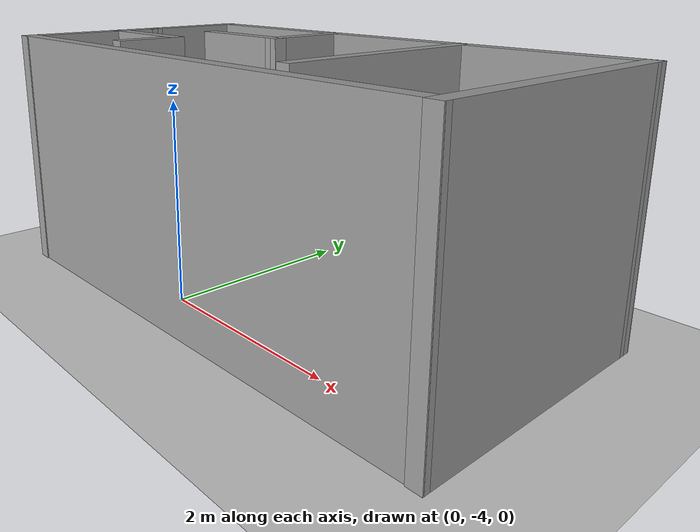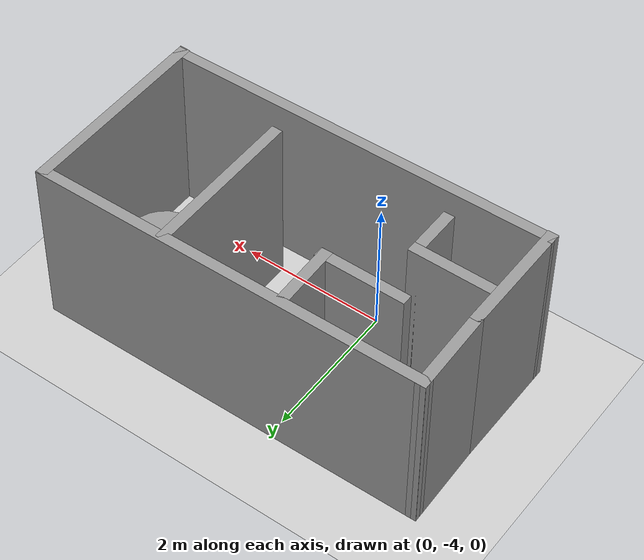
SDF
<sdf version="1.7">
 <world name="default">
  <light name="sun" type="directional">
   <pose>0 0 10 0 -0 0</pose>
   <diffuse>0.8 0.8 0.8 1</diffuse>
   <specular>0.2 0.2 0.2 1</specular>
   <attenuation>
    <range>1000</range>
    <constant>0.9</constant>
    <linear>0.01</linear>
    <quadratic>0.001</quadratic>
   </attenuation>
   <direction>-0.5 0.1 -0.9</direction>
   <spot><inner_angle>0</inner_angle><outer_angle>0</outer_angle><falloff>0</falloff></spot>
  </light>
  <model name="ground_plane">
   <static>1</static>
   <link name="link">
    <collision name="collision">
     <geometry><plane><normal>0 0 1</normal><size>100 100</size></plane></geometry>
     <surface><friction><ode><mu>100</mu><mu2>50</mu2></ode></friction></surface>
    </collision>
    <visual name="visual">
     <cast_shadows>0</cast_shadows>
     <geometry><plane><normal>0 0 1</normal><size>100 100</size></plane></geometry>
     <material>
      <script><uri>file://media/materials/scripts/gazebo.material</uri><name>Gazebo/Grey</name></script>
     </material>
    </visual>
   </link>
  </model>
  <gravity>0 0 -9.8</gravity>
  <magnetic_field>6e-06 2.3e-05 -4.2e-05</magnetic_field>
  <atmosphere type="adiabatic"/>
  <physics type="ode">
   <max_step_size>0.001</max_step_size>
   <real_time_factor>1</real_time_factor>
   <real_time_update_rate>1000</real_time_update_rate>
  </physics>
  <scene><ambient>0.4 0.4 0.4 1</ambient><background>0.7 0.7 0.7 1</background><shadows>1</shadows></scene>
  <audio><device>default</device></audio>
  <spherical_coordinates>
   <surface_model>EARTH_WGS84</surface_model>
   <latitude_deg>0</latitude_deg>
   <longitude_deg>0</longitude_deg>
   <elevation>0</elevation>
   <heading_deg>0</heading_deg>
  </spherical_coordinates>
  <model name="room">
   <pose>0.647866 -2.2675 0 0 -0 0</pose>
   <link name="Wall_0">
    <collision name="Wall_0_Collision">
     <geometry><box><size>1.2704 0.15 2.5</size></box></geometry>
     <pose>0 0 1.25 0 -0 0</pose>
    </collision>
    <visual name="Wall_0_Visual">
     <pose>0 0 1.25 0 -0 0</pose>
     <geometry><box><size>1.2704 0.15 2.5</size></box></geometry>
     <material>
      <script><uri>file://media/materials/scripts/gazebo.material</uri><name>Gazebo/Grey</name></script>
      <ambient>1 1 1 1</ambient>
     </material>
     <meta><layer>0</layer></meta>
    </visual>
    <pose>-2.69287 -0.1225 0 0 -0 1.59758</pose>
   </link>
   <link name="Wall_1">
    <collision name="Wall_1_Collision">
     <geometry><box><size>5.56701 0.15 2.5</size></box></geometry>
     <pose>0 0 1.25 0 -0 0</pose>
    </collision>
    <visual name="Wall_1_Visual">
     <pose>0 0 1.25 0 -0 0</pose>
     <geometry><box><size>5.56701 0.15 2.5</size></box></geometry>
     <material>
      <script><uri>file://media/materials/scripts/gazebo.material</uri><name>Gazebo/Grey</name></script>
      <ambient>1 1 1 1</ambient>
     </material>
     <meta><layer>0</layer></meta>
    </visual>
    <pose>0.000634 0.4605 0 0 -0 0.008492</pose>
   </link>
   <link name="Wall_10">
    <collision name="Wall_10_Collision">
     <geometry><box><size>0.75 0.15 2.5</size></box></geometry>
     <pose>0 0 1.25 0 -0 0</pose>
    </collision>
    <visual name="Wall_10_Visual">
     <pose>0 0 1.25 0 -0 0</pose>
     <geometry><box><size>0.75 0.15 2.5</size></box></geometry>
     <material>
      <script><uri>file://media/materials/scripts/gazebo.material</uri><name>Gazebo/Grey</name></script>
      <ambient>1 1 1 1</ambient>
     </material>
     <meta><layer>0</layer></meta>
    </visual>
    <pose>-1.54787 -1.4225 0 0 -0 -1.5708</pose>
   </link>
   <link name="Wall_12">
    <collision name="Wall_12_Collision">
     <geometry><box><size>2.25 0.15 2.5</size></box></geometry>
     <pose>0 0 1.25 0 -0 0</pose>
    </collision>
    <visual name="Wall_12_Visual">
     <pose>0 0 1.25 0 -0 0</pose>
     <geometry><box><size>2.25 0.15 2.5</size></box></geometry>
     <material>
      <script><uri>file://media/materials/scripts/gazebo.material</uri><name>Gazebo/Grey</name></script>
      <ambient>1 1 1 1</ambient>
     </material>
     <meta><layer>0</layer></meta>
    </visual>
    <pose>0.915833 -0.615975 0 0 -0 -1.5708</pose>
   </link>
   <link name="Wall_2">
    <collision name="Wall_2_Collision">
     <geometry><box><size>2.75 0.15 2.5</size></box></geometry>
     <pose>0 0 1.25 0 -0 0</pose>
    </collision>
    <visual name="Wall_2_Visual">
     <pose>0 0 1.25 0 -0 0</pose>
     <geometry><box><size>2.75 0.15 2.5</size></box></geometry>
     <material>
      <script><uri>file://media/materials/scripts/gazebo.material</uri><name>Gazebo/Grey</name></script>
      <ambient>1 1 1 1</ambient>
     </material>
     <meta><layer>0</layer></meta>
    </visual>
    <pose>2.70913 -0.828 0 0 -0 -1.5708</pose>
   </link>
   <link name="Wall_3">
    <collision name="Wall_3_Collision">
     <geometry><box><size>5.53701 0.15 2.5</size></box></geometry>
     <pose>0 0 1.25 0 -0 0</pose>
    </collision>
    <visual name="Wall_3_Visual">
     <pose>0 0 1.25 0 -0 0</pose>
     <geometry><box><size>5.53701 0.15 2.5</size></box></geometry>
     <material>
      <script><uri>file://media/materials/scripts/gazebo.material</uri><name>Gazebo/Grey</name></script>
      <ambient>1 1 1 1</ambient>
     </material>
     <meta><layer>0</layer></meta>
    </visual>
    <pose>0.015634 -2.1495 0 0 -0 -3.12934</pose>
   </link>
   <link name="Wall_4">
    <collision name="Wall_4_Collision">
     <geometry><box><size>1.65 0.15 2.5</size></box></geometry>
     <pose>0 0 1.25 0 -0 0</pose>
    </collision>
    <visual name="Wall_4_Visual">
     <pose>0 0 1.25 0 -0 0</pose>
     <geometry><box><size>1.65 0.15 2.5</size></box></geometry>
     <material>
      <script><uri>file://media/materials/scripts/gazebo.material</uri><name>Gazebo/Grey</name></script>
      <ambient>1 1 1 1</ambient>
     </material>
     <meta><layer>0</layer></meta>
    </visual>
    <pose>-2.67787 -1.4425 0 0 -0 1.5708</pose>
   </link>
   <link name="Wall_6">
    <collision name="Wall_6_Collision">
     <geometry><box><size>0.993706 0.15 2.5</size></box></geometry>
     <pose>0 0 1.25 0 -0 0</pose>
    </collision>
    <visual name="Wall_6_Visual">
     <pose>0 0 1.25 0 -0 0</pose>
     <geometry><box><size>0.993706 0.15 2.5</size></box></geometry>
     <material>
      <script><uri>file://media/materials/scripts/gazebo.material</uri><name>Gazebo/Grey</name></script>
      <ambient>1 1 1 1</ambient>
     </material>
     <meta><layer>0</layer></meta>
    </visual>
    <pose>-0.756366 0.006 0 0 -0 -1.54352</pose>
   </link>
   <link name="Wall_7">
    <collision name="Wall_7_Collision">
     <geometry><box><size>1.25 0.15 2.5</size></box></geometry>
     <pose>0 0 1.25 0 -0 0</pose>
    </collision>
    <visual name="Wall_7_Visual">
     <pose>0 0 1.25 0 -0 0</pose>
     <geometry><box><size>1.25 0.15 2.5</size></box></geometry>
     <material>
      <script><uri>file://media/materials/scripts/gazebo.material</uri><name>Gazebo/Grey</name></script>
      <ambient>1 1 1 1</ambient>
     </material>
     <meta><layer>0</layer></meta>
    </visual>
    <pose>-1.28337 -0.4155 0 0 -0 3.14159</pose>
   </link>
   <link name="Wall_9">
    <collision name="Wall_9_Collision">
     <geometry><box><size>1.25 0.15 2.5</size></box></geometry>
     <pose>0 0 1.25 0 -0 0</pose>
    </collision>
    <visual name="Wall_9_Visual">
     <pose>0 0 1.25 0 -0 0</pose>
     <geometry><box><size>1.25 0.15 2.5</size></box></geometry>
     <material>
      <script><uri>file://media/materials/scripts/gazebo.material</uri><name>Gazebo/Grey</name></script>
      <ambient>1 1 1 1</ambient>
     </material>
     <meta><layer>0</layer></meta>
    </visual>
    <pose>-2.09787 -1.1225 0 0 -0 0</pose>
   </link>
   <static>1</static>
  </model>
  <model name="unit_cylinder">
   <pose>2.43924 -2.79232 0.499993 -3e-06 -4e-06 -0</pose>
   <link name="link">
    <inertial>
     <mass>1</mass>
     <inertia><ixx>0.145833</ixx><ixy>0</ixy><ixz>0</ixz><iyy>0.145833</iyy><iyz>0</iyz><izz>0.125</izz></inertia>
    </inertial>
    <collision name="collision">
     <geometry><cylinder><radius>0.5</radius><length>1</length></cylinder></geometry>
    </collision>
    <visual name="visual">
     <geometry><cylinder><radius>0.5</radius><length>1</length></cylinder></geometry>
     <material>
      <script><name>Gazebo/Grey</name><uri>file://media/materials/scripts/gazebo.material</uri></script>
     </material>
    </visual>
   </link>
  </model>
 </world>
</sdf>
